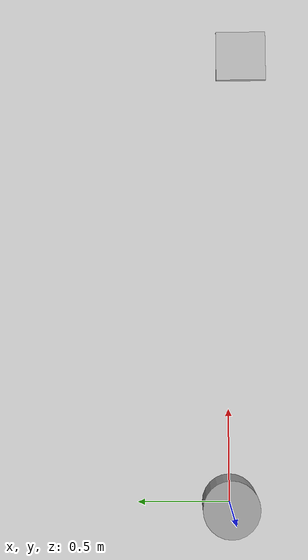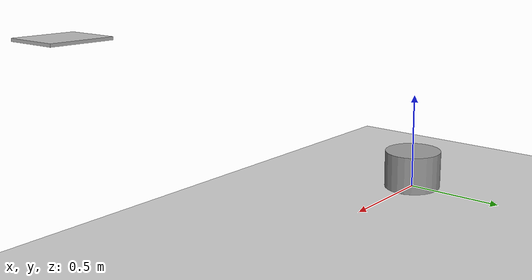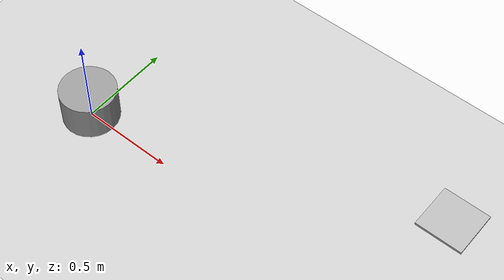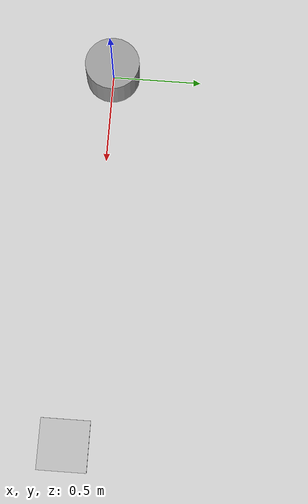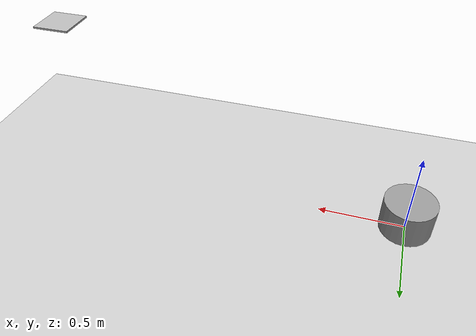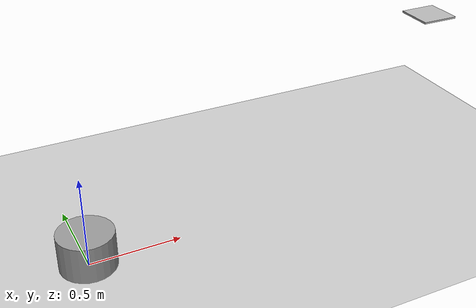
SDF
<?xml version="1.0" ?>
<sdf version="1.6">
  <world name="default">
    <!-- Light -->
    <include>
      <uri>model://sun</uri>
    </include>

    <!-- Ground -->
    <include>
      <uri>model://ground_plane</uri>
    </include>

    <!-- AprilTag Marker (as a box with tag texture) -->
    <include>
      <uri>model://apriltag_marker</uri>
      <pose>1 0 0.5 0 0 0</pose>
    </include>

    <!-- Camera Bot -->
    <include>
      <uri>model://camera_bot</uri>
      <pose>0 0 0 0 0 0</pose>
    </include>

  </world>
</sdf>

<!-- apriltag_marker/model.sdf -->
<sdf version="1.6">
  <model name="apriltag_marker">
    <static>true</static>
    <link name="link">
      <pose>1 0 0.5 0 0 0</pose>
      <visual name="visual">
        <geometry>
          <box>
            <size>0.2 0.2 0.01</size>
          </box>
        </geometry>
        <material>
          <script>
            <uri>model://apriltag_marker/materials/scripts</uri>
            <uri>model://apriltag_marker/materials/textures</uri>
            <name>tag36_11_00000_material</name>
          </script>
        </material>
      </visual>
    </link>
  </model>
</sdf>

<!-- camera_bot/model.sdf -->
<sdf version="1.6">
  <model name="camera_bot">
    <static>false</static>

    <!-- Base link -->
    <link name="base_link">
      <pose>0 0 0.1 0 0 0</pose>
      <collision name="collision">
        <geometry>
          <cylinder>
            <radius>0.15</radius>
            <length>0.2</length>
          </cylinder>
        </geometry>
      </collision>
      <visual name="visual">
        <geometry>
          <cylinder>
            <radius>0.15</radius>
            <length>0.2</length>
          </cylinder>
        </geometry>
        <material>
          <ambient>0.3 0.3 0.3 1</ambient>
          <diffuse>0.6 0.6 0.6 1</diffuse>
        </material>
      </visual>
    </link>

    <!-- Camera link -->
    <link name="camera_link">
      <pose>0.2 0 0.25 0 0 0</pose>

      <sensor name="camera_sensor" type="camera">
        <always_on>1</always_on>
        <update_rate>30</update_rate>
        <visualize>true</visualize>
        <camera>
          <horizontal_fov>1.047</horizontal_fov>
          <image>
            <width>640</width>
            <height>480</height>
            <format>R8G8B8</format>
          </image>
          <clip>
            <near>0.1</near>
            <far>100</far>
          </clip>
        </camera>

        <!-- ROS 2 Camera Plugin -->
        <plugin name="camera_controller" filename="libgazebo_ros_camera.so">
          <ros>
            <namespace>/camera</namespace>
            <remapping>image:=image_raw</remapping>
          </ros>
          <cameraName>camera</cameraName>
          <updateRate>30</updateRate>
          <cameraInfoTopicName>camera_info</cameraInfoTopicName>
        </plugin>
      </sensor>
    </link>

    <!-- Joint between base and camera -->
    <joint name="camera_joint" type="fixed">
      <parent>base_link</parent>
      <child>camera_link</child>
    </joint>
  </model>
</sdf>
